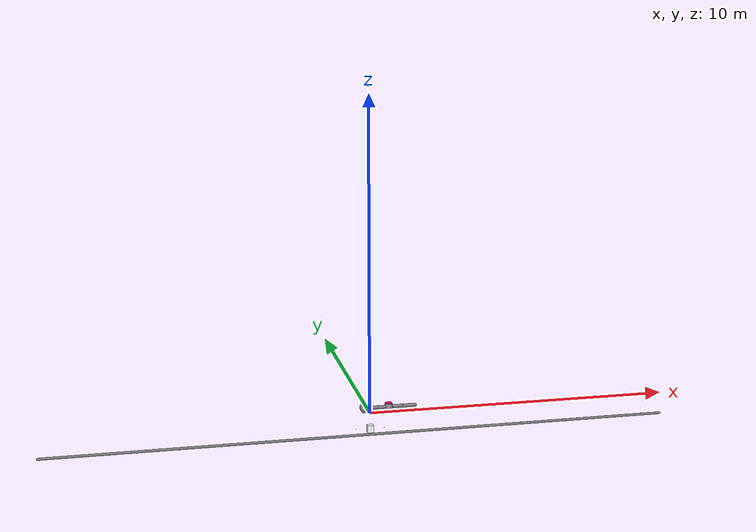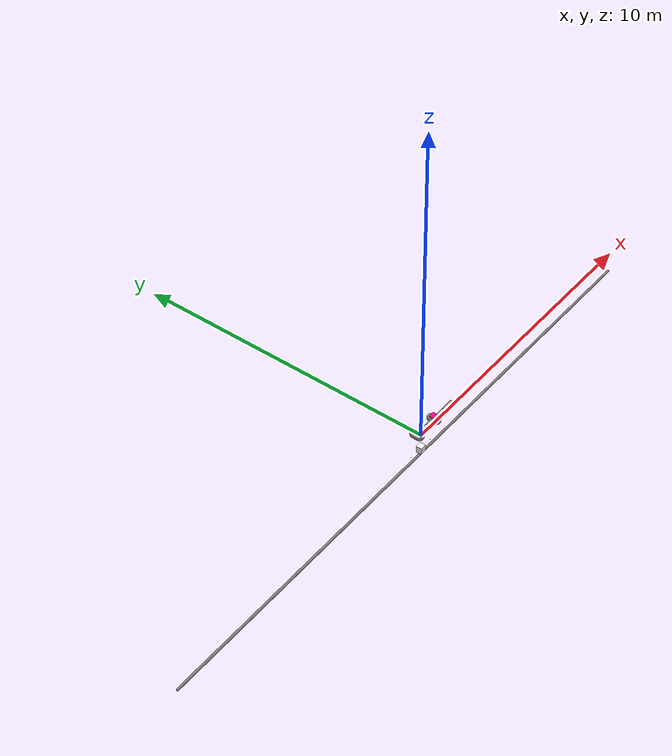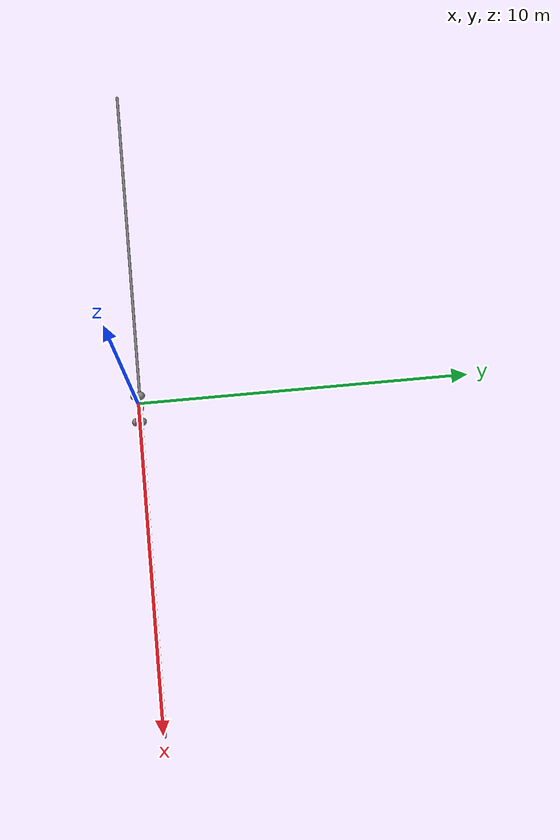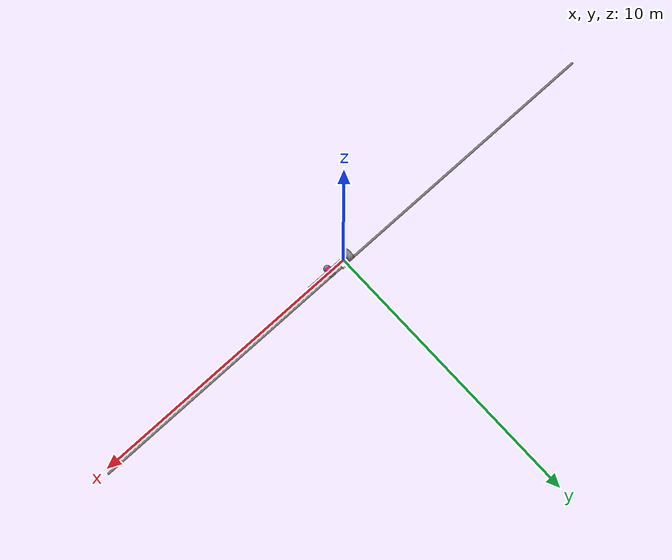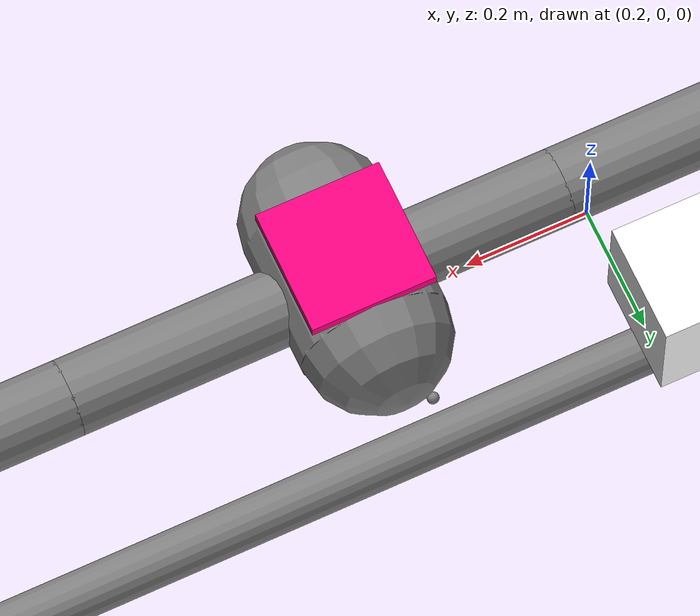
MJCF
<mujoco model="arm3d">
  <compiler inertiafromgeom="true" angle="radian" coordinate="local" />
  <option timestep="0.01" gravity="0 0 -1.x" iterations="20" integrator="Euler" />

  <default>
    <joint armature='0.04' damping="1" limited="true"/>
    <geom friction=".8 .1 .1" density="10" margin="0.002" condim="1" contype="1" conaffinity="1"/>
  </default>

  <worldbody>
    <body name="palm" pos="0.6 0 0.16">
      <geom type="capsule" fromto="0 -0.1 0 0 0.1 0" size="0.12"/>

      <body name="proximal_1" pos="0 0 0">
        <joint name="proximal_j_1" type="hinge" pos="0 0 0" axis="0 1 0" range="-5.5236 5.3963" damping="1.0" />
        <geom type="capsule"  fromto="0 0 0 0.45 0 0" size="0.06" contype="1" conaffinity="1"/>
        <body name="distal_1" pos="0.45 0 0">
          <joint name="distal_j_1" type="hinge" pos="0 0 0" axis="0 1 0" range="-2.3213 2.3" damping="1.0"/>
          <geom type="capsule"  fromto="0 0 0 0.4 0 0" size="0.06" contype="1" conaffinity="1" condim="3"/>
	  <site name="gripper1" pos="0.4 0. 0.0" size="0.01" />

	</body>
      </body>
    </body>
    <body name="palm2" pos="-0.2 0 0.16">
      <geom type="capsule" fromto="0 -0.1 0 0 0.1 0" size="0.12"/>
      <body name="distal_2" pos="0. 0 0">
        <joint name="distal_j_2" type="hinge" pos="0 0 0" axis="0 1 0" range="-5.213 5.3" damping="1.0"/>
        <geom type="capsule" fromto="0 0 0 0.45 0 0" size="0.06" contype="1" conaffinity="1"/>
        <body name="distal_3" pos="0.45 0 0">
          <joint name="distal_j_3" type="hinge" pos="0 0 0" axis="0 1 0" range="-2.3213 2.3" damping="1.0"/>
          <geom type="capsule" fromto="0 0 0 0.4 0 0" size="0.06" contype="1" conaffinity="1" condim="3"/>
	  <site name="gripper2" pos="0.4 0. 0.0" size="0.01" />
	</body>
      </body>
    </body>

    <body name="object" pos=".0 0.0 -.51">
      <geom rgba="1. 1. 1. 1" type="box" size="0.098 0.098 0.11" density='5' contype="1" conaffinity="1" condim="3"/>
      <joint name="obj_slidez" type="slide" pos="0.1 0.05 0.05" axis="0 0 1" range="-10.3213 10.3" damping="0.5"/>
      <joint name="obj_slidex" type="slide" pos="0.05 0.05 0.05" axis="1 0 0" range="-10.3213 10.3" damping="100"/>
      <joint name="obj_rot" type="hinge" pos="0 0 0" axis="0 1 0" range="-5 5" damping="1.0" />
      <site name="obj1" pos="0.45 0.0 0.0" size="0.01" />
      <site name="obj2" pos="-0.45 0.0 0.0" size="0.01" />
    </body>

    <body name="goal" pos=".6 0.0 0.28">
      <geom rgba="1. 0. .5 1" type="box" size="0.1 0.1 0.01" density='1' contype="1" conaffinity="1"/>
      <site name="goal" pos="0. 0.0 0.0" size="0.01" />
    </body>
    <body name="floor" pos="0 0 -0.71">
      <geom type="capsule" fromto="-10 0 0. 10 0 0." size="0.04" contype="1" conaffinity="1" condim="1"/>
    </body>

  </worldbody>
  <actuator>
    <motor joint="proximal_j_1" ctrlrange="-2 2" ctrllimited="true"/>
    <motor joint="distal_j_1" ctrlrange="-2 2" ctrllimited="true"/>
    <motor joint="distal_j_2" ctrlrange="-2 2" ctrllimited="true"/>
    <motor joint="distal_j_3" ctrlrange="-2 2" ctrllimited="true"/>
  </actuator>
</mujoco>
